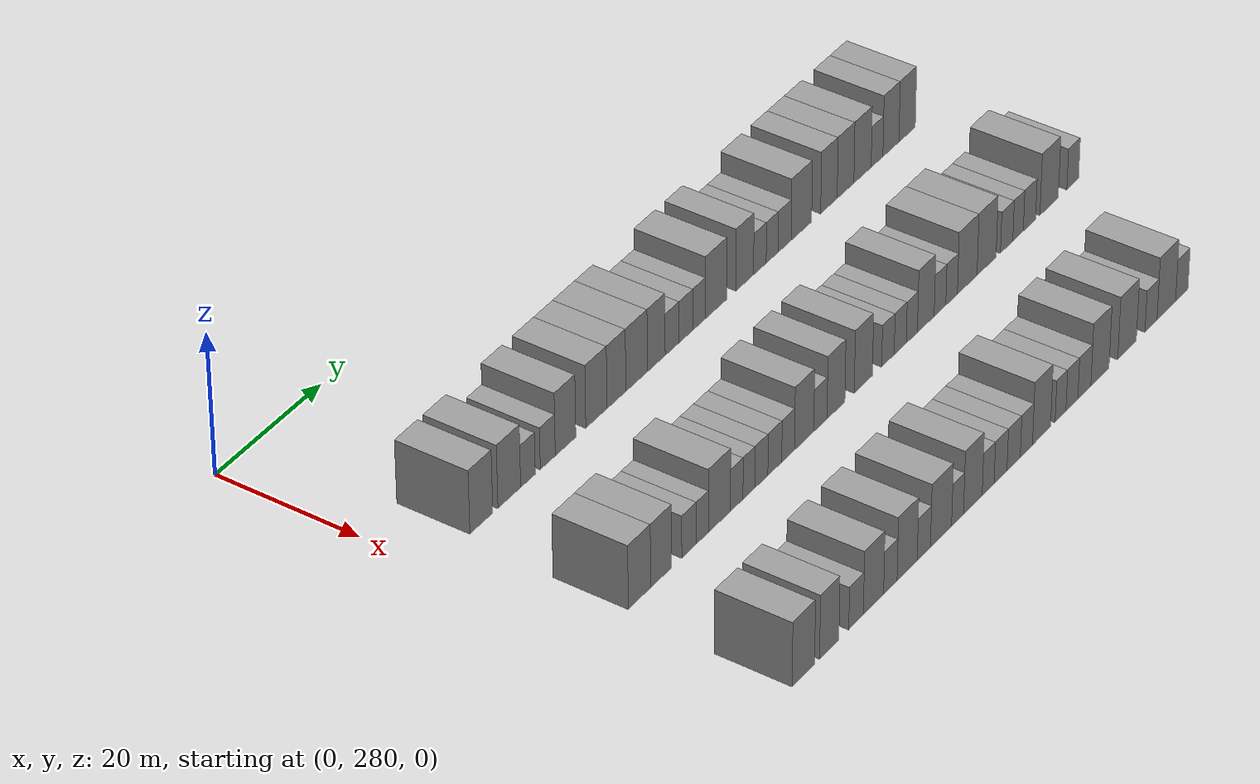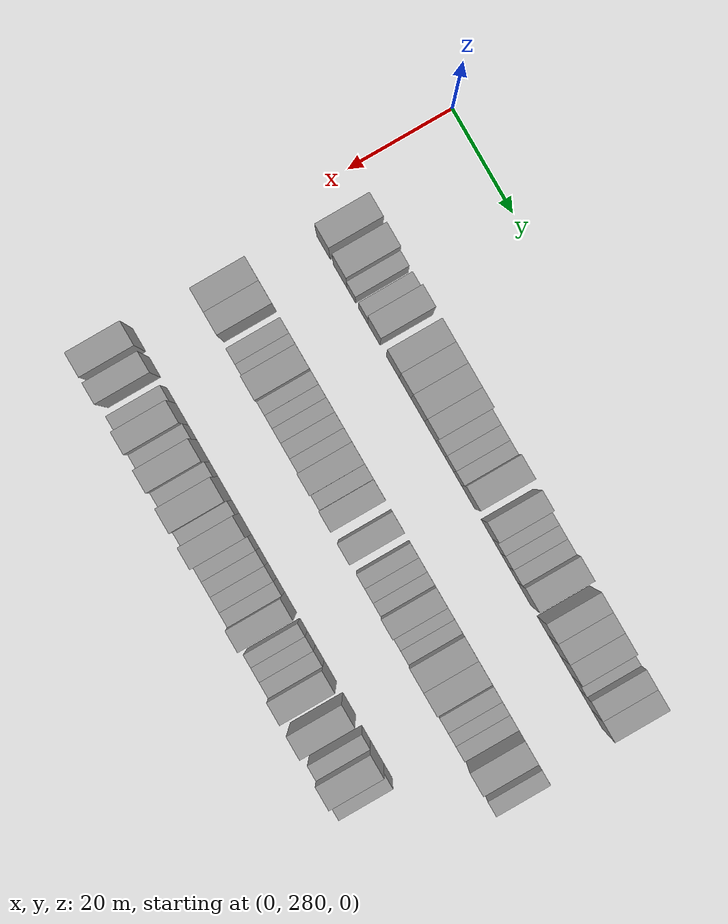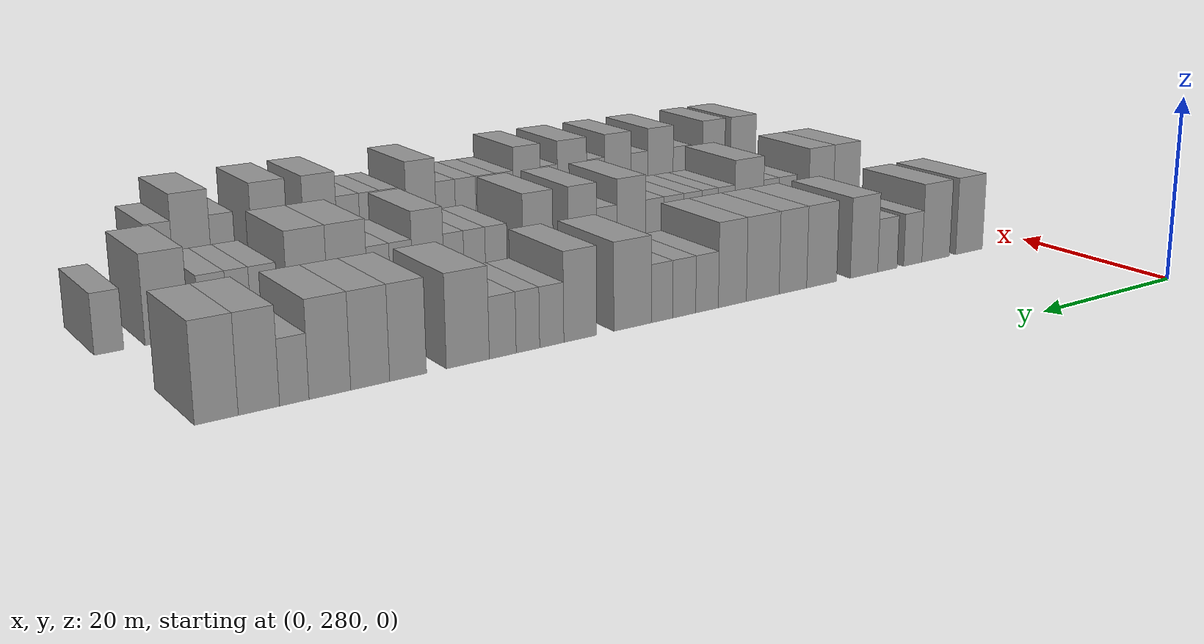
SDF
<sdf version="1.6">
 <world name="default">
  <model name="building_164">
   <static>1</static>
   <pose>25.0000 289.3441 0 0.000000 0.000000 0.000000</pose>
   <link name="link">
    <pose>0 0 4.50 0 0 0</pose>
    <collision name="collision"><geometry><box><size>10.0000 4.4247 9.0000</size></box></geometry></collision>
    <visual name="visual">
     <cast_shadows>0</cast_shadows>
     <geometry><box><size>10.0000 4.4247 9.0000</size></box></geometry>
     <material>
      <script>
       <uri>model://grey_wall/materials/scripts</uri>
       <uri>model://grey_wall/materials/textures</uri>
       <name>vrc/grey_wall</name>
      </script>
     </material>
    </visual>
   </link>
  </model>
  <model name="building_165">
   <static>1</static>
   <pose>25.0000 294.7782 0 0.000000 0.000000 0.000000</pose>
   <link name="link">
    <pose>0 0 4.50 0 0 0</pose>
    <collision name="collision"><geometry><box><size>10.0000 4.4436 9.0000</size></box></geometry></collision>
    <visual name="visual">
     <cast_shadows>0</cast_shadows>
     <geometry><box><size>10.0000 4.4436 9.0000</size></box></geometry>
     <material>
      <script>
       <uri>model://grey_wall/materials/scripts</uri>
       <uri>model://grey_wall/materials/textures</uri>
       <name>vrc/grey_wall</name>
      </script>
     </material>
    </visual>
   </link>
  </model>
  <model name="building_166">
   <static>1</static>
   <pose>25.0000 298.4366 0 0.000000 0.000000 0.000000</pose>
   <link name="link">
    <pose>0 0 3.00 0 0 0</pose>
    <collision name="collision"><geometry><box><size>10.0000 2.8733 6.0000</size></box></geometry></collision>
    <visual name="visual">
     <cast_shadows>0</cast_shadows>
     <geometry><box><size>10.0000 2.8733 6.0000</size></box></geometry>
     <material>
      <script>
       <uri>model://grey_wall/materials/scripts</uri>
       <uri>model://grey_wall/materials/textures</uri>
       <name>vrc/grey_wall</name>
      </script>
     </material>
    </visual>
   </link>
  </model>
  <model name="building_167">
   <static>1</static>
   <pose>25.0000 302.3572 0 0.000000 0.000000 0.000000</pose>
   <link name="link">
    <pose>0 0 3.00 0 0 0</pose>
    <collision name="collision"><geometry><box><size>10.0000 2.9680 6.0000</size></box></geometry></collision>
    <visual name="visual">
     <cast_shadows>0</cast_shadows>
     <geometry><box><size>10.0000 2.9680 6.0000</size></box></geometry>
     <material>
      <script>
       <uri>model://grey_wall/materials/scripts</uri>
       <uri>model://grey_wall/materials/textures</uri>
       <name>vrc/grey_wall</name>
      </script>
     </material>
    </visual>
   </link>
  </model>
  <model name="building_168">
   <static>1</static>
   <pose>25.0000 305.8945 0 0.000000 0.000000 0.000000</pose>
   <link name="link">
    <pose>0 0 4.50 0 0 0</pose>
    <collision name="collision"><geometry><box><size>10.0000 4.1065 9.0000</size></box></geometry></collision>
    <visual name="visual">
     <cast_shadows>0</cast_shadows>
     <geometry><box><size>10.0000 4.1065 9.0000</size></box></geometry>
     <material>
      <script>
       <uri>model://grey_wall/materials/scripts</uri>
       <uri>model://grey_wall/materials/textures</uri>
       <name>vrc/grey_wall</name>
      </script>
     </material>
    </visual>
   </link>
  </model>
  <model name="building_169">
   <static>1</static>
   <pose>25.0000 312.0958 0 0.000000 0.000000 0.000000</pose>
   <link name="link">
    <pose>0 0 4.50 0 0 0</pose>
    <collision name="collision"><geometry><box><size>10.0000 4.2961 9.0000</size></box></geometry></collision>
    <visual name="visual">
     <cast_shadows>0</cast_shadows>
     <geometry><box><size>10.0000 4.2961 9.0000</size></box></geometry>
     <material>
      <script>
       <uri>model://grey_wall/materials/scripts</uri>
       <uri>model://grey_wall/materials/textures</uri>
       <name>vrc/grey_wall</name>
      </script>
     </material>
    </visual>
   </link>
  </model>
  <model name="building_170">
   <static>1</static>
   <pose>25.0000 316.1616 0 0.000000 0.000000 0.000000</pose>
   <link name="link">
    <pose>0 0 4.50 0 0 0</pose>
    <collision name="collision"><geometry><box><size>10.0000 3.8355 9.0000</size></box></geometry></collision>
    <visual name="visual">
     <cast_shadows>0</cast_shadows>
     <geometry><box><size>10.0000 3.8355 9.0000</size></box></geometry>
     <material>
      <script>
       <uri>model://grey_wall/materials/scripts</uri>
       <uri>model://grey_wall/materials/textures</uri>
       <name>vrc/grey_wall</name>
      </script>
     </material>
    </visual>
   </link>
  </model>
  <model name="building_171">
   <static>1</static>
   <pose>25.0000 320.2941 0 0.000000 0.000000 0.000000</pose>
   <link name="link">
    <pose>0 0 4.50 0 0 0</pose>
    <collision name="collision"><geometry><box><size>10.0000 4.4296 9.0000</size></box></geometry></collision>
    <visual name="visual">
     <cast_shadows>0</cast_shadows>
     <geometry><box><size>10.0000 4.4296 9.0000</size></box></geometry>
     <material>
      <script>
       <uri>model://grey_wall/materials/scripts</uri>
       <uri>model://grey_wall/materials/textures</uri>
       <name>vrc/grey_wall</name>
      </script>
     </material>
    </visual>
   </link>
  </model>
  <model name="building_172">
   <static>1</static>
   <pose>25.0000 324.3501 0 0.000000 0.000000 0.000000</pose>
   <link name="link">
    <pose>0 0 4.50 0 0 0</pose>
    <collision name="collision"><geometry><box><size>10.0000 3.6823 9.0000</size></box></geometry></collision>
    <visual name="visual">
     <cast_shadows>0</cast_shadows>
     <geometry><box><size>10.0000 3.6823 9.0000</size></box></geometry>
     <material>
      <script>
       <uri>model://grey_wall/materials/scripts</uri>
       <uri>model://grey_wall/materials/textures</uri>
       <name>vrc/grey_wall</name>
      </script>
     </material>
    </visual>
   </link>
  </model>
  <model name="building_173">
   <static>1</static>
   <pose>25.0000 327.6497 0 0.000000 0.000000 0.000000</pose>
   <link name="link">
    <pose>0 0 3.00 0 0 0</pose>
    <collision name="collision"><geometry><box><size>10.0000 2.9170 6.0000</size></box></geometry></collision>
    <visual name="visual">
     <cast_shadows>0</cast_shadows>
     <geometry><box><size>10.0000 2.9170 6.0000</size></box></geometry>
     <material>
      <script>
       <uri>model://grey_wall/materials/scripts</uri>
       <uri>model://grey_wall/materials/textures</uri>
       <name>vrc/grey_wall</name>
      </script>
     </material>
    </visual>
   </link>
  </model>
  <model name="building_174">
   <static>1</static>
   <pose>25.0000 330.5495 0 0.000000 0.000000 0.000000</pose>
   <link name="link">
    <pose>0 0 3.00 0 0 0</pose>
    <collision name="collision"><geometry><box><size>10.0000 2.8825 6.0000</size></box></geometry></collision>
    <visual name="visual">
     <cast_shadows>0</cast_shadows>
     <geometry><box><size>10.0000 2.8825 6.0000</size></box></geometry>
     <material>
      <script>
       <uri>model://grey_wall/materials/scripts</uri>
       <uri>model://grey_wall/materials/textures</uri>
       <name>vrc/grey_wall</name>
      </script>
     </material>
    </visual>
   </link>
  </model>
  <model name="building_175">
   <static>1</static>
   <pose>25.0000 333.3231 0 0.000000 0.000000 0.000000</pose>
   <link name="link">
    <pose>0 0 3.00 0 0 0</pose>
    <collision name="collision"><geometry><box><size>10.0000 2.6648 6.0000</size></box></geometry></collision>
    <visual name="visual">
     <cast_shadows>0</cast_shadows>
     <geometry><box><size>10.0000 2.6648 6.0000</size></box></geometry>
     <material>
      <script>
       <uri>model://grey_wall/materials/scripts</uri>
       <uri>model://grey_wall/materials/textures</uri>
       <name>vrc/grey_wall</name>
      </script>
     </material>
    </visual>
   </link>
  </model>
  <model name="building_176">
   <static>1</static>
   <pose>25.0000 336.8975 0 0.000000 0.000000 0.000000</pose>
   <link name="link">
    <pose>0 0 4.50 0 0 0</pose>
    <collision name="collision"><geometry><box><size>10.0000 4.4841 9.0000</size></box></geometry></collision>
    <visual name="visual">
     <cast_shadows>0</cast_shadows>
     <geometry><box><size>10.0000 4.4841 9.0000</size></box></geometry>
     <material>
      <script>
       <uri>model://grey_wall/materials/scripts</uri>
       <uri>model://grey_wall/materials/textures</uri>
       <name>vrc/grey_wall</name>
      </script>
     </material>
    </visual>
   </link>
  </model>
  <model name="building_177">
   <static>1</static>
   <pose>25.0000 343.0223 0 0.000000 0.000000 0.000000</pose>
   <link name="link">
    <pose>0 0 4.50 0 0 0</pose>
    <collision name="collision"><geometry><box><size>10.0000 3.7653 9.0000</size></box></geometry></collision>
    <visual name="visual">
     <cast_shadows>0</cast_shadows>
     <geometry><box><size>10.0000 3.7653 9.0000</size></box></geometry>
     <material>
      <script>
       <uri>model://grey_wall/materials/scripts</uri>
       <uri>model://grey_wall/materials/textures</uri>
       <name>vrc/grey_wall</name>
      </script>
     </material>
    </visual>
   </link>
  </model>
  <model name="building_178">
   <static>1</static>
   <pose>25.0000 346.2578 0 0.000000 0.000000 0.000000</pose>
   <link name="link">
    <pose>0 0 3.00 0 0 0</pose>
    <collision name="collision"><geometry><box><size>10.0000 2.7056 6.0000</size></box></geometry></collision>
    <visual name="visual">
     <cast_shadows>0</cast_shadows>
     <geometry><box><size>10.0000 2.7056 6.0000</size></box></geometry>
     <material>
      <script>
       <uri>model://grey_wall/materials/scripts</uri>
       <uri>model://grey_wall/materials/textures</uri>
       <name>vrc/grey_wall</name>
      </script>
     </material>
    </visual>
   </link>
  </model>
  <model name="building_179">
   <static>1</static>
   <pose>25.0000 348.8971 0 0.000000 0.000000 0.000000</pose>
   <link name="link">
    <pose>0 0 3.00 0 0 0</pose>
    <collision name="collision"><geometry><box><size>10.0000 2.5731 6.0000</size></box></geometry></collision>
    <visual name="visual">
     <cast_shadows>0</cast_shadows>
     <geometry><box><size>10.0000 2.5731 6.0000</size></box></geometry>
     <material>
      <script>
       <uri>model://grey_wall/materials/scripts</uri>
       <uri>model://grey_wall/materials/textures</uri>
       <name>vrc/grey_wall</name>
      </script>
     </material>
    </visual>
   </link>
  </model>
  <model name="building_180">
   <static>1</static>
   <pose>25.0000 351.6248 0 0.000000 0.000000 0.000000</pose>
   <link name="link">
    <pose>0 0 3.00 0 0 0</pose>
    <collision name="collision"><geometry><box><size>10.0000 2.8823 6.0000</size></box></geometry></collision>
    <visual name="visual">
     <cast_shadows>0</cast_shadows>
     <geometry><box><size>10.0000 2.8823 6.0000</size></box></geometry>
     <material>
      <script>
       <uri>model://grey_wall/materials/scripts</uri>
       <uri>model://grey_wall/materials/textures</uri>
       <name>vrc/grey_wall</name>
      </script>
     </material>
    </visual>
   </link>
  </model>
  <model name="building_181">
   <static>1</static>
   <pose>25.0000 355.3046 0 0.000000 0.000000 0.000000</pose>
   <link name="link">
    <pose>0 0 4.50 0 0 0</pose>
    <collision name="collision"><geometry><box><size>10.0000 4.4775 9.0000</size></box></geometry></collision>
    <visual name="visual">
     <cast_shadows>0</cast_shadows>
     <geometry><box><size>10.0000 4.4775 9.0000</size></box></geometry>
     <material>
      <script>
       <uri>model://grey_wall/materials/scripts</uri>
       <uri>model://grey_wall/materials/textures</uri>
       <name>vrc/grey_wall</name>
      </script>
     </material>
    </visual>
   </link>
  </model>
  <model name="building_182">
   <static>1</static>
   <pose>25.0000 361.3709 0 0.000000 0.000000 0.000000</pose>
   <link name="link">
    <pose>0 0 4.50 0 0 0</pose>
    <collision name="collision"><geometry><box><size>10.0000 3.6550 9.0000</size></box></geometry></collision>
    <visual name="visual">
     <cast_shadows>0</cast_shadows>
     <geometry><box><size>10.0000 3.6550 9.0000</size></box></geometry>
     <material>
      <script>
       <uri>model://grey_wall/materials/scripts</uri>
       <uri>model://grey_wall/materials/textures</uri>
       <name>vrc/grey_wall</name>
      </script>
     </material>
    </visual>
   </link>
  </model>
  <model name="building_183">
   <static>1</static>
   <pose>25.0000 365.0693 0 0.000000 0.000000 0.000000</pose>
   <link name="link">
    <pose>0 0 4.50 0 0 0</pose>
    <collision name="collision"><geometry><box><size>10.0000 3.7419 9.0000</size></box></geometry></collision>
    <visual name="visual">
     <cast_shadows>0</cast_shadows>
     <geometry><box><size>10.0000 3.7419 9.0000</size></box></geometry>
     <material>
      <script>
       <uri>model://grey_wall/materials/scripts</uri>
       <uri>model://grey_wall/materials/textures</uri>
       <name>vrc/grey_wall</name>
      </script>
     </material>
    </visual>
   </link>
  </model>
  <model name="building_184">
   <static>1</static>
   <pose>25.0000 368.8817 0 0.000000 0.000000 0.000000</pose>
   <link name="link">
    <pose>0 0 4.50 0 0 0</pose>
    <collision name="collision"><geometry><box><size>10.0000 3.8830 9.0000</size></box></geometry></collision>
    <visual name="visual">
     <cast_shadows>0</cast_shadows>
     <geometry><box><size>10.0000 3.8830 9.0000</size></box></geometry>
     <material>
      <script>
       <uri>model://grey_wall/materials/scripts</uri>
       <uri>model://grey_wall/materials/textures</uri>
       <name>vrc/grey_wall</name>
      </script>
     </material>
    </visual>
   </link>
  </model>
  <model name="building_185">
   <static>1</static>
   <pose>25.0000 372.1567 0 0.000000 0.000000 0.000000</pose>
   <link name="link">
    <pose>0 0 3.00 0 0 0</pose>
    <collision name="collision"><geometry><box><size>10.0000 2.6670 6.0000</size></box></geometry></collision>
    <visual name="visual">
     <cast_shadows>0</cast_shadows>
     <geometry><box><size>10.0000 2.6670 6.0000</size></box></geometry>
     <material>
      <script>
       <uri>model://grey_wall/materials/scripts</uri>
       <uri>model://grey_wall/materials/textures</uri>
       <name>vrc/grey_wall</name>
      </script>
     </material>
    </visual>
   </link>
  </model>
  <model name="building_186">
   <static>1</static>
   <pose>25.0000 375.3118 0 0.000000 0.000000 0.000000</pose>
   <link name="link">
    <pose>0 0 4.50 0 0 0</pose>
    <collision name="collision"><geometry><box><size>10.0000 3.6430 9.0000</size></box></geometry></collision>
    <visual name="visual">
     <cast_shadows>0</cast_shadows>
     <geometry><box><size>10.0000 3.6430 9.0000</size></box></geometry>
     <material>
      <script>
       <uri>model://grey_wall/materials/scripts</uri>
       <uri>model://grey_wall/materials/textures</uri>
       <name>vrc/grey_wall</name>
      </script>
     </material>
    </visual>
   </link>
  </model>
  <model name="building_187">
   <static>1</static>
   <pose>25.0000 379.0142 0 0.000000 0.000000 0.000000</pose>
   <link name="link">
    <pose>0 0 4.50 0 0 0</pose>
    <collision name="collision"><geometry><box><size>10.0000 3.7618 9.0000</size></box></geometry></collision>
    <visual name="visual">
     <cast_shadows>0</cast_shadows>
     <geometry><box><size>10.0000 3.7618 9.0000</size></box></geometry>
     <material>
      <script>
       <uri>model://grey_wall/materials/scripts</uri>
       <uri>model://grey_wall/materials/textures</uri>
       <name>vrc/grey_wall</name>
      </script>
     </material>
    </visual>
   </link>
  </model>
  <model name="building_345">
   <static>1</static>
   <pose>47.0000 288.2024 0 0.000000 0.000000 0.000000</pose>
   <link name="link">
    <pose>0 0 4.50 0 0 0</pose>
    <collision name="collision"><geometry><box><size>10.0000 4.3919 9.0000</size></box></geometry></collision>
    <visual name="visual">
     <cast_shadows>0</cast_shadows>
     <geometry><box><size>10.0000 4.3919 9.0000</size></box></geometry>
     <material>
      <script>
       <uri>model://grey_wall/materials/scripts</uri>
       <uri>model://grey_wall/materials/textures</uri>
       <name>vrc/grey_wall</name>
      </script>
     </material>
    </visual>
   </link>
  </model>
  <model name="building_346">
   <static>1</static>
   <pose>47.0000 292.4870 0 0.000000 0.000000 0.000000</pose>
   <link name="link">
    <pose>0 0 4.50 0 0 0</pose>
    <collision name="collision"><geometry><box><size>10.0000 4.1773 9.0000</size></box></geometry></collision>
    <visual name="visual">
     <cast_shadows>0</cast_shadows>
     <geometry><box><size>10.0000 4.1773 9.0000</size></box></geometry>
     <material>
      <script>
       <uri>model://grey_wall/materials/scripts</uri>
       <uri>model://grey_wall/materials/textures</uri>
       <name>vrc/grey_wall</name>
      </script>
     </material>
    </visual>
   </link>
  </model>
  <model name="building_347">
   <static>1</static>
   <pose>47.0000 298.0423 0 0.000000 0.000000 0.000000</pose>
   <link name="link">
    <pose>0 0 3.00 0 0 0</pose>
    <collision name="collision"><geometry><box><size>10.0000 2.9334 6.0000</size></box></geometry></collision>
    <visual name="visual">
     <cast_shadows>0</cast_shadows>
     <geometry><box><size>10.0000 2.9334 6.0000</size></box></geometry>
     <material>
      <script>
       <uri>model://grey_wall/materials/scripts</uri>
       <uri>model://grey_wall/materials/textures</uri>
       <name>vrc/grey_wall</name>
      </script>
     </material>
    </visual>
   </link>
  </model>
  <model name="building_348">
   <static>1</static>
   <pose>47.0000 300.7106 0 0.000000 0.000000 0.000000</pose>
   <link name="link">
    <pose>0 0 3.00 0 0 0</pose>
    <collision name="collision"><geometry><box><size>10.0000 2.4031 6.0000</size></box></geometry></collision>
    <visual name="visual">
     <cast_shadows>0</cast_shadows>
     <geometry><box><size>10.0000 2.4031 6.0000</size></box></geometry>
     <material>
      <script>
       <uri>model://grey_wall/materials/scripts</uri>
       <uri>model://grey_wall/materials/textures</uri>
       <name>vrc/grey_wall</name>
      </script>
     </material>
    </visual>
   </link>
  </model>
  <model name="building_349">
   <static>1</static>
   <pose>47.0000 304.1563 0 0.000000 0.000000 0.000000</pose>
   <link name="link">
    <pose>0 0 4.50 0 0 0</pose>
    <collision name="collision"><geometry><box><size>10.0000 4.4883 9.0000</size></box></geometry></collision>
    <visual name="visual">
     <cast_shadows>0</cast_shadows>
     <geometry><box><size>10.0000 4.4883 9.0000</size></box></geometry>
     <material>
      <script>
       <uri>model://grey_wall/materials/scripts</uri>
       <uri>model://grey_wall/materials/textures</uri>
       <name>vrc/grey_wall</name>
      </script>
     </material>
    </visual>
   </link>
  </model>
  <model name="building_350">
   <static>1</static>
   <pose>47.0000 307.6731 0 0.000000 0.000000 0.000000</pose>
   <link name="link">
    <pose>0 0 3.00 0 0 0</pose>
    <collision name="collision"><geometry><box><size>10.0000 2.5453 6.0000</size></box></geometry></collision>
    <visual name="visual">
     <cast_shadows>0</cast_shadows>
     <geometry><box><size>10.0000 2.5453 6.0000</size></box></geometry>
     <material>
      <script>
       <uri>model://grey_wall/materials/scripts</uri>
       <uri>model://grey_wall/materials/textures</uri>
       <name>vrc/grey_wall</name>
      </script>
     </material>
    </visual>
   </link>
  </model>
  <model name="building_351">
   <static>1</static>
   <pose>47.0000 310.1562 0 0.000000 0.000000 0.000000</pose>
   <link name="link">
    <pose>0 0 3.00 0 0 0</pose>
    <collision name="collision"><geometry><box><size>10.0000 2.4208 6.0000</size></box></geometry></collision>
    <visual name="visual">
     <cast_shadows>0</cast_shadows>
     <geometry><box><size>10.0000 2.4208 6.0000</size></box></geometry>
     <material>
      <script>
       <uri>model://grey_wall/materials/scripts</uri>
       <uri>model://grey_wall/materials/textures</uri>
       <name>vrc/grey_wall</name>
      </script>
     </material>
    </visual>
   </link>
  </model>
  <model name="building_352">
   <static>1</static>
   <pose>47.0000 312.7136 0 0.000000 0.000000 0.000000</pose>
   <link name="link">
    <pose>0 0 3.00 0 0 0</pose>
    <collision name="collision"><geometry><box><size>10.0000 2.6940 6.0000</size></box></geometry></collision>
    <visual name="visual">
     <cast_shadows>0</cast_shadows>
     <geometry><box><size>10.0000 2.6940 6.0000</size></box></geometry>
     <material>
      <script>
       <uri>model://grey_wall/materials/scripts</uri>
       <uri>model://grey_wall/materials/textures</uri>
       <name>vrc/grey_wall</name>
      </script>
     </material>
    </visual>
   </link>
  </model>
  <model name="building_353">
   <static>1</static>
   <pose>47.0000 315.5045 0 0.000000 0.000000 0.000000</pose>
   <link name="link">
    <pose>0 0 3.00 0 0 0</pose>
    <collision name="collision"><geometry><box><size>10.0000 2.8879 6.0000</size></box></geometry></collision>
    <visual name="visual">
     <cast_shadows>0</cast_shadows>
     <geometry><box><size>10.0000 2.8879 6.0000</size></box></geometry>
     <material>
      <script>
       <uri>model://grey_wall/materials/scripts</uri>
       <uri>model://grey_wall/materials/textures</uri>
       <name>vrc/grey_wall</name>
      </script>
     </material>
    </visual>
   </link>
  </model>
  <model name="building_354">
   <static>1</static>
   <pose>47.0000 318.2898 0 0.000000 0.000000 0.000000</pose>
   <link name="link">
    <pose>0 0 3.00 0 0 0</pose>
    <collision name="collision"><geometry><box><size>10.0000 2.6826 6.0000</size></box></geometry></collision>
    <visual name="visual">
     <cast_shadows>0</cast_shadows>
     <geometry><box><size>10.0000 2.6826 6.0000</size></box></geometry>
     <material>
      <script>
       <uri>model://grey_wall/materials/scripts</uri>
       <uri>model://grey_wall/materials/textures</uri>
       <name>vrc/grey_wall</name>
      </script>
     </material>
    </visual>
   </link>
  </model>
  <model name="building_355">
   <static>1</static>
   <pose>47.0000 321.6393 0 0.000000 0.000000 0.000000</pose>
   <link name="link">
    <pose>0 0 4.50 0 0 0</pose>
    <collision name="collision"><geometry><box><size>10.0000 4.0165 9.0000</size></box></geometry></collision>
    <visual name="visual">
     <cast_shadows>0</cast_shadows>
     <geometry><box><size>10.0000 4.0165 9.0000</size></box></geometry>
     <material>
      <script>
       <uri>model://grey_wall/materials/scripts</uri>
       <uri>model://grey_wall/materials/textures</uri>
       <name>vrc/grey_wall</name>
      </script>
     </material>
    </visual>
   </link>
  </model>
  <model name="building_356">
   <static>1</static>
   <pose>47.0000 325.0442 0 0.000000 0.000000 0.000000</pose>
   <link name="link">
    <pose>0 0 3.00 0 0 0</pose>
    <collision name="collision"><geometry><box><size>10.0000 2.7934 6.0000</size></box></geometry></collision>
    <visual name="visual">
     <cast_shadows>0</cast_shadows>
     <geometry><box><size>10.0000 2.7934 6.0000</size></box></geometry>
     <material>
      <script>
       <uri>model://grey_wall/materials/scripts</uri>
       <uri>model://grey_wall/materials/textures</uri>
       <name>vrc/grey_wall</name>
      </script>
     </material>
    </visual>
   </link>
  </model>
  <model name="building_357">
   <static>1</static>
   <pose>47.0000 328.3432 0 0.000000 0.000000 0.000000</pose>
   <link name="link">
    <pose>0 0 4.50 0 0 0</pose>
    <collision name="collision"><geometry><box><size>10.0000 3.8045 9.0000</size></box></geometry></collision>
    <visual name="visual">
     <cast_shadows>0</cast_shadows>
     <geometry><box><size>10.0000 3.8045 9.0000</size></box></geometry>
     <material>
      <script>
       <uri>model://grey_wall/materials/scripts</uri>
       <uri>model://grey_wall/materials/textures</uri>
       <name>vrc/grey_wall</name>
      </script>
     </material>
    </visual>
   </link>
  </model>
  <model name="building_358">
   <static>1</static>
   <pose>47.0000 334.1967 0 0.000000 0.000000 0.000000</pose>
   <link name="link">
    <pose>0 0 4.50 0 0 0</pose>
    <collision name="collision"><geometry><box><size>10.0000 3.9026 9.0000</size></box></geometry></collision>
    <visual name="visual">
     <cast_shadows>0</cast_shadows>
     <geometry><box><size>10.0000 3.9026 9.0000</size></box></geometry>
     <material>
      <script>
       <uri>model://grey_wall/materials/scripts</uri>
       <uri>model://grey_wall/materials/textures</uri>
       <name>vrc/grey_wall</name>
      </script>
     </material>
    </visual>
   </link>
  </model>
  <model name="building_359">
   <static>1</static>
   <pose>47.0000 339.5084 0 0.000000 0.000000 0.000000</pose>
   <link name="link">
    <pose>0 0 3.00 0 0 0</pose>
    <collision name="collision"><geometry><box><size>10.0000 2.7208 6.0000</size></box></geometry></collision>
    <visual name="visual">
     <cast_shadows>0</cast_shadows>
     <geometry><box><size>10.0000 2.7208 6.0000</size></box></geometry>
     <material>
      <script>
       <uri>model://grey_wall/materials/scripts</uri>
       <uri>model://grey_wall/materials/textures</uri>
       <name>vrc/grey_wall</name>
      </script>
     </material>
    </visual>
   </link>
  </model>
  <model name="building_360">
   <static>1</static>
   <pose>47.0000 342.1871 0 0.000000 0.000000 0.000000</pose>
   <link name="link">
    <pose>0 0 3.00 0 0 0</pose>
    <collision name="collision"><geometry><box><size>10.0000 2.6365 6.0000</size></box></geometry></collision>
    <visual name="visual">
     <cast_shadows>0</cast_shadows>
     <geometry><box><size>10.0000 2.6365 6.0000</size></box></geometry>
     <material>
      <script>
       <uri>model://grey_wall/materials/scripts</uri>
       <uri>model://grey_wall/materials/textures</uri>
       <name>vrc/grey_wall</name>
      </script>
     </material>
    </visual>
   </link>
  </model>
  <model name="building_361">
   <static>1</static>
   <pose>47.0000 344.7224 0 0.000000 0.000000 0.000000</pose>
   <link name="link">
    <pose>0 0 3.00 0 0 0</pose>
    <collision name="collision"><geometry><box><size>10.0000 2.4341 6.0000</size></box></geometry></collision>
    <visual name="visual">
     <cast_shadows>0</cast_shadows>
     <geometry><box><size>10.0000 2.4341 6.0000</size></box></geometry>
     <material>
      <script>
       <uri>model://grey_wall/materials/scripts</uri>
       <uri>model://grey_wall/materials/textures</uri>
       <name>vrc/grey_wall</name>
      </script>
     </material>
    </visual>
   </link>
  </model>
  <model name="building_362">
   <static>1</static>
   <pose>47.0000 347.7892 0 0.000000 0.000000 0.000000</pose>
   <link name="link">
    <pose>0 0 4.50 0 0 0</pose>
    <collision name="collision"><geometry><box><size>10.0000 3.6996 9.0000</size></box></geometry></collision>
    <visual name="visual">
     <cast_shadows>0</cast_shadows>
     <geometry><box><size>10.0000 3.6996 9.0000</size></box></geometry>
     <material>
      <script>
       <uri>model://grey_wall/materials/scripts</uri>
       <uri>model://grey_wall/materials/textures</uri>
       <name>vrc/grey_wall</name>
      </script>
     </material>
    </visual>
   </link>
  </model>
  <model name="building_363">
   <static>1</static>
   <pose>47.0000 350.9331 0 0.000000 0.000000 0.000000</pose>
   <link name="link">
    <pose>0 0 3.00 0 0 0</pose>
    <collision name="collision"><geometry><box><size>10.0000 2.5880 6.0000</size></box></geometry></collision>
    <visual name="visual">
     <cast_shadows>0</cast_shadows>
     <geometry><box><size>10.0000 2.5880 6.0000</size></box></geometry>
     <material>
      <script>
       <uri>model://grey_wall/materials/scripts</uri>
       <uri>model://grey_wall/materials/textures</uri>
       <name>vrc/grey_wall</name>
      </script>
     </material>
    </visual>
   </link>
  </model>
  <model name="building_364">
   <static>1</static>
   <pose>47.0000 353.5214 0 0.000000 0.000000 0.000000</pose>
   <link name="link">
    <pose>0 0 3.00 0 0 0</pose>
    <collision name="collision"><geometry><box><size>10.0000 2.5888 6.0000</size></box></geometry></collision>
    <visual name="visual">
     <cast_shadows>0</cast_shadows>
     <geometry><box><size>10.0000 2.5888 6.0000</size></box></geometry>
     <material>
      <script>
       <uri>model://grey_wall/materials/scripts</uri>
       <uri>model://grey_wall/materials/textures</uri>
       <name>vrc/grey_wall</name>
      </script>
     </material>
    </visual>
   </link>
  </model>
  <model name="building_365">
   <static>1</static>
   <pose>47.0000 357.0240 0 0.000000 0.000000 0.000000</pose>
   <link name="link">
    <pose>0 0 4.50 0 0 0</pose>
    <collision name="collision"><geometry><box><size>10.0000 4.4163 9.0000</size></box></geometry></collision>
    <visual name="visual">
     <cast_shadows>0</cast_shadows>
     <geometry><box><size>10.0000 4.4163 9.0000</size></box></geometry>
     <material>
      <script>
       <uri>model://grey_wall/materials/scripts</uri>
       <uri>model://grey_wall/materials/textures</uri>
       <name>vrc/grey_wall</name>
      </script>
     </material>
    </visual>
   </link>
  </model>
  <model name="building_366">
   <static>1</static>
   <pose>47.0000 361.3874 0 0.000000 0.000000 0.000000</pose>
   <link name="link">
    <pose>0 0 4.50 0 0 0</pose>
    <collision name="collision"><geometry><box><size>10.0000 4.3106 9.0000</size></box></geometry></collision>
    <visual name="visual">
     <cast_shadows>0</cast_shadows>
     <geometry><box><size>10.0000 4.3106 9.0000</size></box></geometry>
     <material>
      <script>
       <uri>model://grey_wall/materials/scripts</uri>
       <uri>model://grey_wall/materials/textures</uri>
       <name>vrc/grey_wall</name>
      </script>
     </material>
    </visual>
   </link>
  </model>
  <model name="building_367">
   <static>1</static>
   <pose>47.0000 365.9577 0 0.000000 0.000000 0.000000</pose>
   <link name="link">
    <pose>0 0 3.00 0 0 0</pose>
    <collision name="collision"><geometry><box><size>10.0000 2.8300 6.0000</size></box></geometry></collision>
    <visual name="visual">
     <cast_shadows>0</cast_shadows>
     <geometry><box><size>10.0000 2.8300 6.0000</size></box></geometry>
     <material>
      <script>
       <uri>model://grey_wall/materials/scripts</uri>
       <uri>model://grey_wall/materials/textures</uri>
       <name>vrc/grey_wall</name>
      </script>
     </material>
    </visual>
   </link>
  </model>
  <model name="building_368">
   <static>1</static>
   <pose>47.0000 368.5765 0 0.000000 0.000000 0.000000</pose>
   <link name="link">
    <pose>0 0 3.00 0 0 0</pose>
    <collision name="collision"><geometry><box><size>10.0000 2.4076 6.0000</size></box></geometry></collision>
    <visual name="visual">
     <cast_shadows>0</cast_shadows>
     <geometry><box><size>10.0000 2.4076 6.0000</size></box></geometry>
     <material>
      <script>
       <uri>model://grey_wall/materials/scripts</uri>
       <uri>model://grey_wall/materials/textures</uri>
       <name>vrc/grey_wall</name>
      </script>
     </material>
    </visual>
   </link>
  </model>
  <model name="building_369">
   <static>1</static>
   <pose>47.0000 371.1986 0 0.000000 0.000000 0.000000</pose>
   <link name="link">
    <pose>0 0 3.00 0 0 0</pose>
    <collision name="collision"><geometry><box><size>10.0000 2.8366 6.0000</size></box></geometry></collision>
    <visual name="visual">
     <cast_shadows>0</cast_shadows>
     <geometry><box><size>10.0000 2.8366 6.0000</size></box></geometry>
     <material>
      <script>
       <uri>model://grey_wall/materials/scripts</uri>
       <uri>model://grey_wall/materials/textures</uri>
       <name>vrc/grey_wall</name>
      </script>
     </material>
    </visual>
   </link>
  </model>
  <model name="building_370">
   <static>1</static>
   <pose>47.0000 375.7524 0 0.000000 0.000000 0.000000</pose>
   <link name="link">
    <pose>0 0 4.50 0 0 0</pose>
    <collision name="collision"><geometry><box><size>10.0000 4.2710 9.0000</size></box></geometry></collision>
    <visual name="visual">
     <cast_shadows>0</cast_shadows>
     <geometry><box><size>10.0000 4.2710 9.0000</size></box></geometry>
     <material>
      <script>
       <uri>model://grey_wall/materials/scripts</uri>
       <uri>model://grey_wall/materials/textures</uri>
       <name>vrc/grey_wall</name>
      </script>
     </material>
    </visual>
   </link>
  </model>
  <model name="building_371">
   <static>1</static>
   <pose>47.0000 381.2712 0 0.000000 0.000000 0.000000</pose>
   <link name="link">
    <pose>0 0 3.00 0 0 0</pose>
    <collision name="collision"><geometry><box><size>10.0000 2.7666 6.0000</size></box></geometry></collision>
    <visual name="visual">
     <cast_shadows>0</cast_shadows>
     <geometry><box><size>10.0000 2.7666 6.0000</size></box></geometry>
     <material>
      <script>
       <uri>model://grey_wall/materials/scripts</uri>
       <uri>model://grey_wall/materials/textures</uri>
       <name>vrc/grey_wall</name>
      </script>
     </material>
    </visual>
   </link>
  </model>
  <model name="building_528">
   <static>1</static>
   <pose>69.0000 287.2105 0 0.000000 0.000000 0.000000</pose>
   <link name="link">
    <pose>0 0 4.50 0 0 0</pose>
    <collision name="collision"><geometry><box><size>10.0000 4.4873 9.0000</size></box></geometry></collision>
    <visual name="visual">
     <cast_shadows>0</cast_shadows>
     <geometry><box><size>10.0000 4.4873 9.0000</size></box></geometry>
     <material>
      <script>
       <uri>model://grey_wall/materials/scripts</uri>
       <uri>model://grey_wall/materials/textures</uri>
       <name>vrc/grey_wall</name>
      </script>
     </material>
    </visual>
   </link>
  </model>
  <model name="building_529">
   <static>1</static>
   <pose>69.0000 292.4014 0 0.000000 0.000000 0.000000</pose>
   <link name="link">
    <pose>0 0 4.50 0 0 0</pose>
    <collision name="collision"><geometry><box><size>10.0000 3.8945 9.0000</size></box></geometry></collision>
    <visual name="visual">
     <cast_shadows>0</cast_shadows>
     <geometry><box><size>10.0000 3.8945 9.0000</size></box></geometry>
     <material>
      <script>
       <uri>model://grey_wall/materials/scripts</uri>
       <uri>model://grey_wall/materials/textures</uri>
       <name>vrc/grey_wall</name>
      </script>
     </material>
    </visual>
   </link>
  </model>
  <model name="building_530">
   <static>1</static>
   <pose>69.0000 297.8388 0 0.000000 0.000000 0.000000</pose>
   <link name="link">
    <pose>0 0 3.00 0 0 0</pose>
    <collision name="collision"><geometry><box><size>10.0000 2.9802 6.0000</size></box></geometry></collision>
    <visual name="visual">
     <cast_shadows>0</cast_shadows>
     <geometry><box><size>10.0000 2.9802 6.0000</size></box></geometry>
     <material>
      <script>
       <uri>model://grey_wall/materials/scripts</uri>
       <uri>model://grey_wall/materials/textures</uri>
       <name>vrc/grey_wall</name>
      </script>
     </material>
    </visual>
   </link>
  </model>
  <model name="building_531">
   <static>1</static>
   <pose>69.0000 301.4048 0 0.000000 0.000000 0.000000</pose>
   <link name="link">
    <pose>0 0 4.50 0 0 0</pose>
    <collision name="collision"><geometry><box><size>10.0000 4.1517 9.0000</size></box></geometry></collision>
    <visual name="visual">
     <cast_shadows>0</cast_shadows>
     <geometry><box><size>10.0000 4.1517 9.0000</size></box></geometry>
     <material>
      <script>
       <uri>model://grey_wall/materials/scripts</uri>
       <uri>model://grey_wall/materials/textures</uri>
       <name>vrc/grey_wall</name>
      </script>
     </material>
    </visual>
   </link>
  </model>
  <model name="building_532">
   <static>1</static>
   <pose>69.0000 304.8759 0 0.000000 0.000000 0.000000</pose>
   <link name="link">
    <pose>0 0 3.00 0 0 0</pose>
    <collision name="collision"><geometry><box><size>10.0000 2.7906 6.0000</size></box></geometry></collision>
    <visual name="visual">
     <cast_shadows>0</cast_shadows>
     <geometry><box><size>10.0000 2.7906 6.0000</size></box></geometry>
     <material>
      <script>
       <uri>model://grey_wall/materials/scripts</uri>
       <uri>model://grey_wall/materials/textures</uri>
       <name>vrc/grey_wall</name>
      </script>
     </material>
    </visual>
   </link>
  </model>
  <model name="building_533">
   <static>1</static>
   <pose>69.0000 308.3660 0 0.000000 0.000000 0.000000</pose>
   <link name="link">
    <pose>0 0 4.50 0 0 0</pose>
    <collision name="collision"><geometry><box><size>10.0000 4.1896 9.0000</size></box></geometry></collision>
    <visual name="visual">
     <cast_shadows>0</cast_shadows>
     <geometry><box><size>10.0000 4.1896 9.0000</size></box></geometry>
     <material>
      <script>
       <uri>model://grey_wall/materials/scripts</uri>
       <uri>model://grey_wall/materials/textures</uri>
       <name>vrc/grey_wall</name>
      </script>
     </material>
    </visual>
   </link>
  </model>
  <model name="building_534">
   <static>1</static>
   <pose>69.0000 311.8536 0 0.000000 0.000000 0.000000</pose>
   <link name="link">
    <pose>0 0 3.00 0 0 0</pose>
    <collision name="collision"><geometry><box><size>10.0000 2.7856 6.0000</size></box></geometry></collision>
    <visual name="visual">
     <cast_shadows>0</cast_shadows>
     <geometry><box><size>10.0000 2.7856 6.0000</size></box></geometry>
     <material>
      <script>
       <uri>model://grey_wall/materials/scripts</uri>
       <uri>model://grey_wall/materials/textures</uri>
       <name>vrc/grey_wall</name>
      </script>
     </material>
    </visual>
   </link>
  </model>
  <model name="building_535">
   <static>1</static>
   <pose>69.0000 315.4852 0 0.000000 0.000000 0.000000</pose>
   <link name="link">
    <pose>0 0 4.50 0 0 0</pose>
    <collision name="collision"><geometry><box><size>10.0000 4.4777 9.0000</size></box></geometry></collision>
    <visual name="visual">
     <cast_shadows>0</cast_shadows>
     <geometry><box><size>10.0000 4.4777 9.0000</size></box></geometry>
     <material>
      <script>
       <uri>model://grey_wall/materials/scripts</uri>
       <uri>model://grey_wall/materials/textures</uri>
       <name>vrc/grey_wall</name>
      </script>
     </material>
    </visual>
   </link>
  </model>
  <model name="building_536">
   <static>1</static>
   <pose>69.0000 318.9934 0 0.000000 0.000000 0.000000</pose>
   <link name="link">
    <pose>0 0 3.00 0 0 0</pose>
    <collision name="collision"><geometry><box><size>10.0000 2.5387 6.0000</size></box></geometry></collision>
    <visual name="visual">
     <cast_shadows>0</cast_shadows>
     <geometry><box><size>10.0000 2.5387 6.0000</size></box></geometry>
     <material>
      <script>
       <uri>model://grey_wall/materials/scripts</uri>
       <uri>model://grey_wall/materials/textures</uri>
       <name>vrc/grey_wall</name>
      </script>
     </material>
    </visual>
   </link>
  </model>
  <model name="building_537">
   <static>1</static>
   <pose>69.0000 322.2655 0 0.000000 0.000000 0.000000</pose>
   <link name="link">
    <pose>0 0 4.50 0 0 0</pose>
    <collision name="collision"><geometry><box><size>10.0000 4.0055 9.0000</size></box></geometry></collision>
    <visual name="visual">
     <cast_shadows>0</cast_shadows>
     <geometry><box><size>10.0000 4.0055 9.0000</size></box></geometry>
     <material>
      <script>
       <uri>model://grey_wall/materials/scripts</uri>
       <uri>model://grey_wall/materials/textures</uri>
       <name>vrc/grey_wall</name>
      </script>
     </material>
    </visual>
   </link>
  </model>
  <model name="building_538">
   <static>1</static>
   <pose>69.0000 325.5586 0 0.000000 0.000000 0.000000</pose>
   <link name="link">
    <pose>0 0 3.00 0 0 0</pose>
    <collision name="collision"><geometry><box><size>10.0000 2.5808 6.0000</size></box></geometry></collision>
    <visual name="visual">
     <cast_shadows>0</cast_shadows>
     <geometry><box><size>10.0000 2.5808 6.0000</size></box></geometry>
     <material>
      <script>
       <uri>model://grey_wall/materials/scripts</uri>
       <uri>model://grey_wall/materials/textures</uri>
       <name>vrc/grey_wall</name>
      </script>
     </material>
    </visual>
   </link>
  </model>
  <model name="building_539">
   <static>1</static>
   <pose>69.0000 328.2485 0 0.000000 0.000000 0.000000</pose>
   <link name="link">
    <pose>0 0 3.00 0 0 0</pose>
    <collision name="collision"><geometry><box><size>10.0000 2.7990 6.0000</size></box></geometry></collision>
    <visual name="visual">
     <cast_shadows>0</cast_shadows>
     <geometry><box><size>10.0000 2.7990 6.0000</size></box></geometry>
     <material>
      <script>
       <uri>model://grey_wall/materials/scripts</uri>
       <uri>model://grey_wall/materials/textures</uri>
       <name>vrc/grey_wall</name>
      </script>
     </material>
    </visual>
   </link>
  </model>
  <model name="building_540">
   <static>1</static>
   <pose>69.0000 331.0896 0 0.000000 0.000000 0.000000</pose>
   <link name="link">
    <pose>0 0 3.00 0 0 0</pose>
    <collision name="collision"><geometry><box><size>10.0000 2.8832 6.0000</size></box></geometry></collision>
    <visual name="visual">
     <cast_shadows>0</cast_shadows>
     <geometry><box><size>10.0000 2.8832 6.0000</size></box></geometry>
     <material>
      <script>
       <uri>model://grey_wall/materials/scripts</uri>
       <uri>model://grey_wall/materials/textures</uri>
       <name>vrc/grey_wall</name>
      </script>
     </material>
    </visual>
   </link>
  </model>
  <model name="building_541">
   <static>1</static>
   <pose>69.0000 333.8739 0 0.000000 0.000000 0.000000</pose>
   <link name="link">
    <pose>0 0 3.00 0 0 0</pose>
    <collision name="collision"><geometry><box><size>10.0000 2.6853 6.0000</size></box></geometry></collision>
    <visual name="visual">
     <cast_shadows>0</cast_shadows>
     <geometry><box><size>10.0000 2.6853 6.0000</size></box></geometry>
     <material>
      <script>
       <uri>model://grey_wall/materials/scripts</uri>
       <uri>model://grey_wall/materials/textures</uri>
       <name>vrc/grey_wall</name>
      </script>
     </material>
    </visual>
   </link>
  </model>
  <model name="building_542">
   <static>1</static>
   <pose>69.0000 337.2133 0 0.000000 0.000000 0.000000</pose>
   <link name="link">
    <pose>0 0 4.50 0 0 0</pose>
    <collision name="collision"><geometry><box><size>10.0000 3.9936 9.0000</size></box></geometry></collision>
    <visual name="visual">
     <cast_shadows>0</cast_shadows>
     <geometry><box><size>10.0000 3.9936 9.0000</size></box></geometry>
     <material>
      <script>
       <uri>model://grey_wall/materials/scripts</uri>
       <uri>model://grey_wall/materials/textures</uri>
       <name>vrc/grey_wall</name>
      </script>
     </material>
    </visual>
   </link>
  </model>
  <model name="building_543">
   <static>1</static>
   <pose>69.0000 341.4170 0 0.000000 0.000000 0.000000</pose>
   <link name="link">
    <pose>0 0 3.00 0 0 0</pose>
    <collision name="collision"><geometry><box><size>10.0000 2.4136 6.0000</size></box></geometry></collision>
    <visual name="visual">
     <cast_shadows>0</cast_shadows>
     <geometry><box><size>10.0000 2.4136 6.0000</size></box></geometry>
     <material>
      <script>
       <uri>model://grey_wall/materials/scripts</uri>
       <uri>model://grey_wall/materials/textures</uri>
       <name>vrc/grey_wall</name>
      </script>
     </material>
    </visual>
   </link>
  </model>
  <model name="building_544">
   <static>1</static>
   <pose>69.0000 343.9583 0 0.000000 0.000000 0.000000</pose>
   <link name="link">
    <pose>0 0 3.00 0 0 0</pose>
    <collision name="collision"><geometry><box><size>10.0000 2.6691 6.0000</size></box></geometry></collision>
    <visual name="visual">
     <cast_shadows>0</cast_shadows>
     <geometry><box><size>10.0000 2.6691 6.0000</size></box></geometry>
     <material>
      <script>
       <uri>model://grey_wall/materials/scripts</uri>
       <uri>model://grey_wall/materials/textures</uri>
       <name>vrc/grey_wall</name>
      </script>
     </material>
    </visual>
   </link>
  </model>
  <model name="building_545">
   <static>1</static>
   <pose>69.0000 346.7526 0 0.000000 0.000000 0.000000</pose>
   <link name="link">
    <pose>0 0 3.00 0 0 0</pose>
    <collision name="collision"><geometry><box><size>10.0000 2.9195 6.0000</size></box></geometry></collision>
    <visual name="visual">
     <cast_shadows>0</cast_shadows>
     <geometry><box><size>10.0000 2.9195 6.0000</size></box></geometry>
     <material>
      <script>
       <uri>model://grey_wall/materials/scripts</uri>
       <uri>model://grey_wall/materials/textures</uri>
       <name>vrc/grey_wall</name>
      </script>
     </material>
    </visual>
   </link>
  </model>
  <model name="building_546">
   <static>1</static>
   <pose>69.0000 350.2705 0 0.000000 0.000000 0.000000</pose>
   <link name="link">
    <pose>0 0 4.50 0 0 0</pose>
    <collision name="collision"><geometry><box><size>10.0000 4.1163 9.0000</size></box></geometry></collision>
    <visual name="visual">
     <cast_shadows>0</cast_shadows>
     <geometry><box><size>10.0000 4.1163 9.0000</size></box></geometry>
     <material>
      <script>
       <uri>model://grey_wall/materials/scripts</uri>
       <uri>model://grey_wall/materials/textures</uri>
       <name>vrc/grey_wall</name>
      </script>
     </material>
    </visual>
   </link>
  </model>
  <model name="building_547">
   <static>1</static>
   <pose>69.0000 356.4556 0 0.000000 0.000000 0.000000</pose>
   <link name="link">
    <pose>0 0 4.50 0 0 0</pose>
    <collision name="collision"><geometry><box><size>10.0000 4.2539 9.0000</size></box></geometry></collision>
    <visual name="visual">
     <cast_shadows>0</cast_shadows>
     <geometry><box><size>10.0000 4.2539 9.0000</size></box></geometry>
     <material>
      <script>
       <uri>model://grey_wall/materials/scripts</uri>
       <uri>model://grey_wall/materials/textures</uri>
       <name>vrc/grey_wall</name>
      </script>
     </material>
    </visual>
   </link>
  </model>
  <model name="building_548">
   <static>1</static>
   <pose>69.0000 361.9734 0 0.000000 0.000000 0.000000</pose>
   <link name="link">
    <pose>0 0 3.00 0 0 0</pose>
    <collision name="collision"><geometry><box><size>10.0000 2.7816 6.0000</size></box></geometry></collision>
    <visual name="visual">
     <cast_shadows>0</cast_shadows>
     <geometry><box><size>10.0000 2.7816 6.0000</size></box></geometry>
     <material>
      <script>
       <uri>model://grey_wall/materials/scripts</uri>
       <uri>model://grey_wall/materials/textures</uri>
       <name>vrc/grey_wall</name>
      </script>
     </material>
    </visual>
   </link>
  </model>
  <model name="building_549">
   <static>1</static>
   <pose>69.0000 365.5258 0 0.000000 0.000000 0.000000</pose>
   <link name="link">
    <pose>0 0 4.50 0 0 0</pose>
    <collision name="collision"><geometry><box><size>10.0000 4.3233 9.0000</size></box></geometry></collision>
    <visual name="visual">
     <cast_shadows>0</cast_shadows>
     <geometry><box><size>10.0000 4.3233 9.0000</size></box></geometry>
     <material>
      <script>
       <uri>model://grey_wall/materials/scripts</uri>
       <uri>model://grey_wall/materials/textures</uri>
       <name>vrc/grey_wall</name>
      </script>
     </material>
    </visual>
   </link>
  </model>
  <model name="building_550">
   <static>1</static>
   <pose>69.0000 369.1444 0 0.000000 0.000000 0.000000</pose>
   <link name="link">
    <pose>0 0 3.00 0 0 0</pose>
    <collision name="collision"><geometry><box><size>10.0000 2.9138 6.0000</size></box></geometry></collision>
    <visual name="visual">
     <cast_shadows>0</cast_shadows>
     <geometry><box><size>10.0000 2.9138 6.0000</size></box></geometry>
     <material>
      <script>
       <uri>model://grey_wall/materials/scripts</uri>
       <uri>model://grey_wall/materials/textures</uri>
       <name>vrc/grey_wall</name>
      </script>
     </material>
    </visual>
   </link>
  </model>
 </world>
</sdf>
